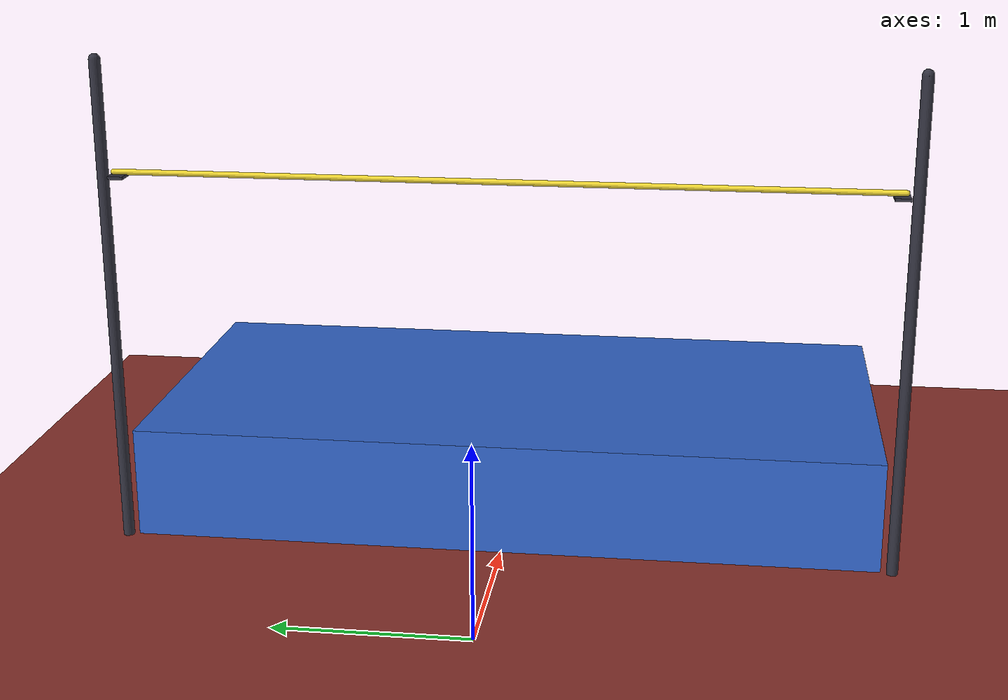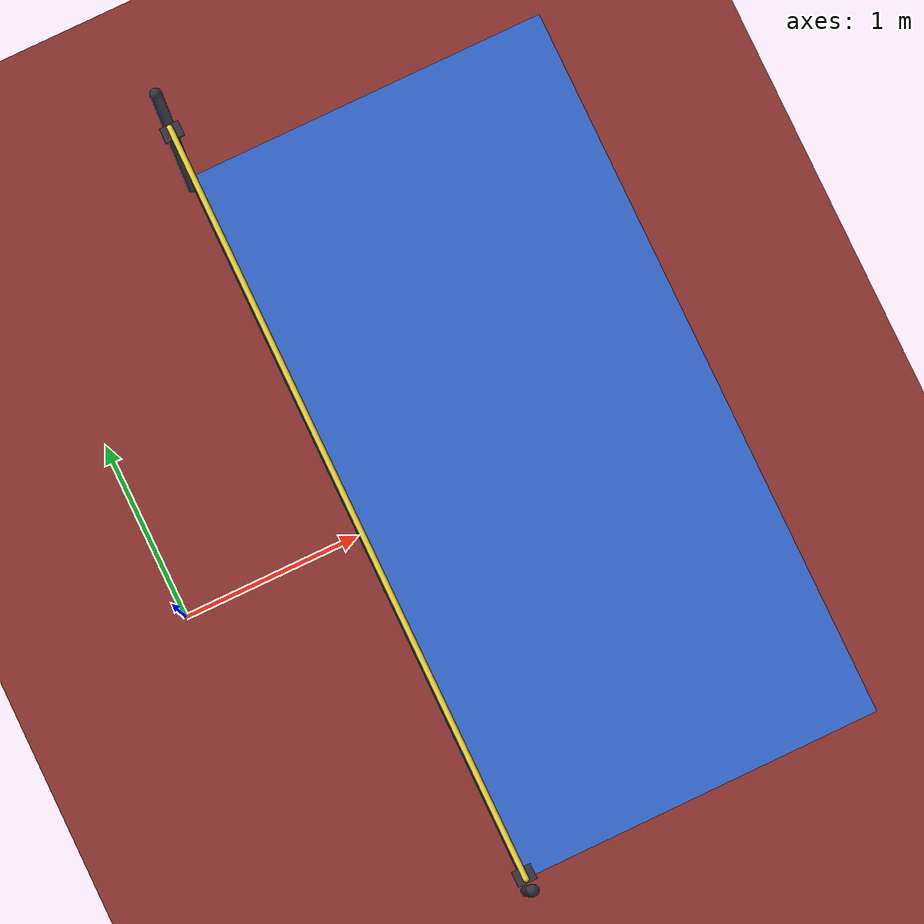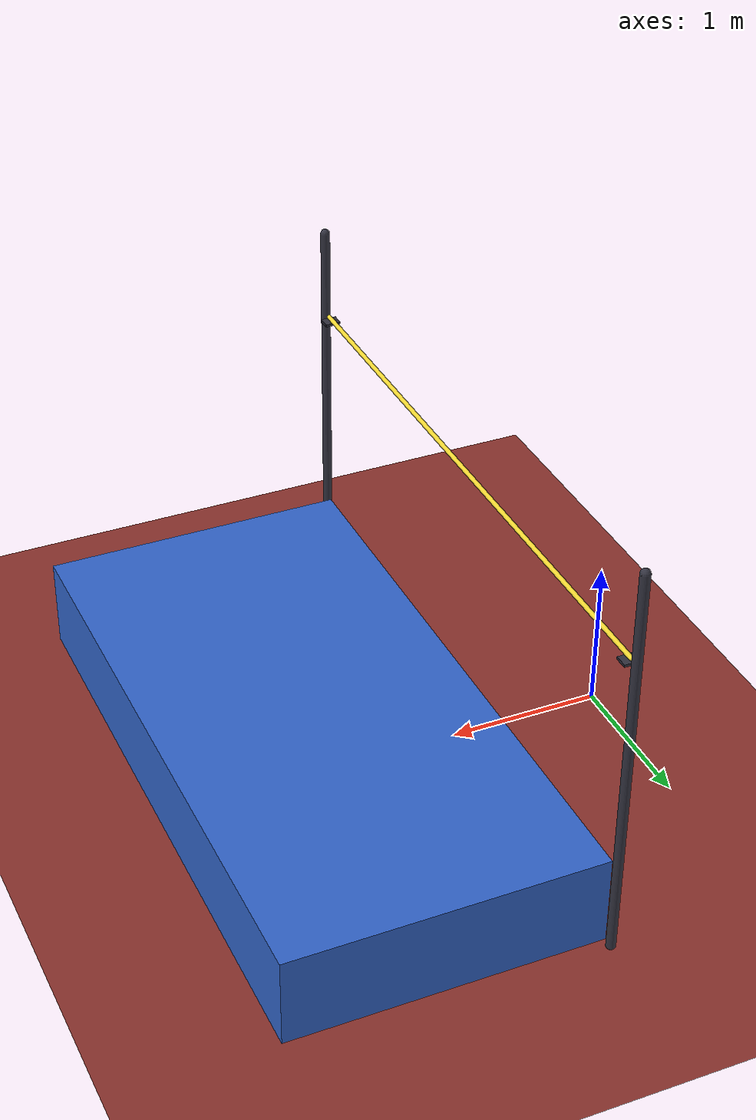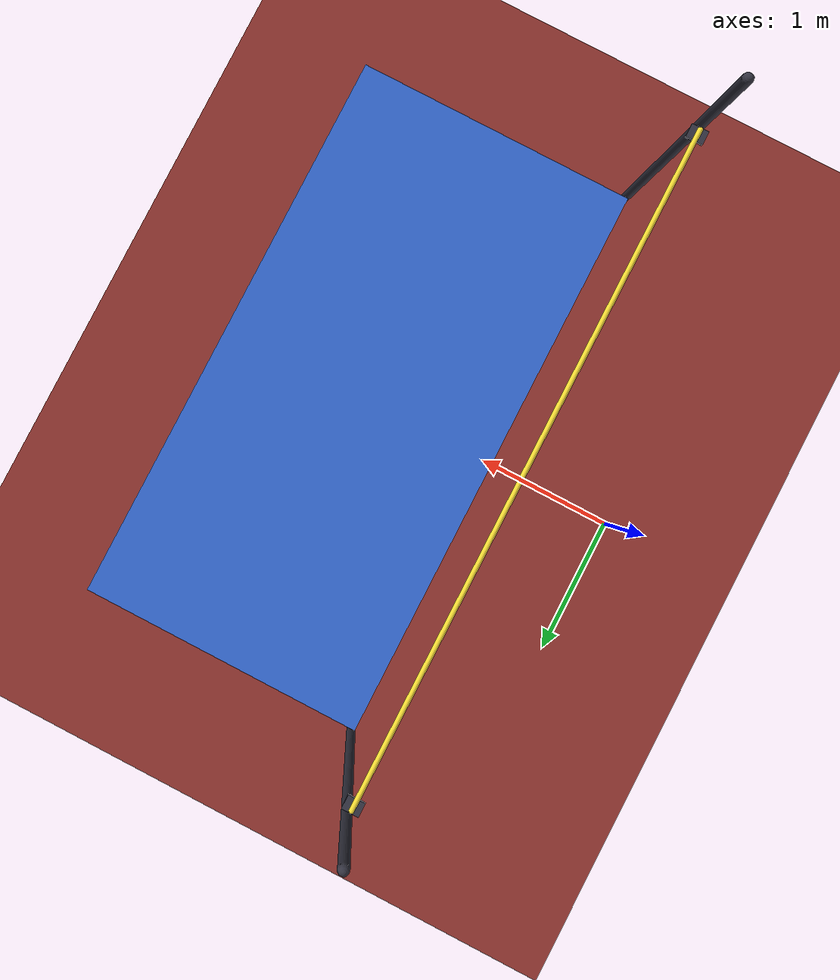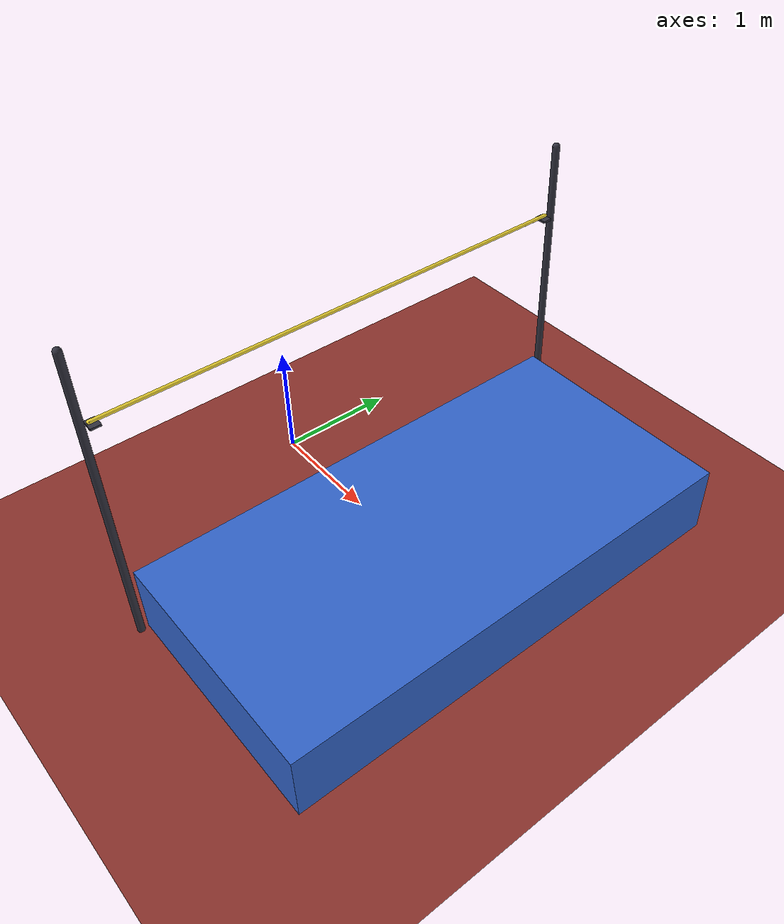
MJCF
<mujoco model="highjump_arena">
  <compiler angle="radian"/>

  <default>
    <default class="arena">
      <geom contype="1" conaffinity="1" condim="3"/>
    </default>
  </default>

  <asset>
    <material name="mat_runway" rgba="0.55 0.20 0.18 1"/>
    <material name="mat_standard" rgba="0.20 0.20 0.25 1"/>
    <material name="mat_bar" rgba="0.95 0.85 0.20 1"/>
    <material name="mat_pad" rgba="0.20 0.40 0.80 1"/>
  </asset>

  <worldbody>
    <light name="arena_light" pos="0 0 5" dir="0 0 -1" directional="true"/>

    <!-- runway / ground plane -->
    <geom name="arena_floor" class="arena" type="plane" size="0 0 0.05"
          material="mat_runway"/>

    <!-- landing mat: soft box behind the bar (top at z=0.6) -->
    <geom name="landing_mat" class="arena" type="box" size="1.0 2.0 0.3"
          pos="2.0 0 0.3" material="mat_pad"
          solref="0.04 1" solimp="0.85 0.92 0.02"
          friction="1.0 0.005 0.0001"/>

    <body name="standard_l" pos="1.0 2.06 0">
      <geom name="pole_l" class="arena" type="capsule" fromto="0 0 0 0 0 2.6"
            size="0.03" material="mat_standard"/>
      <geom name="peg_l" class="arena" type="box" size="0.05 0.04 0.008"
            pos="0 -0.08 2.0" condim="6" material="mat_standard"/>
    </body>
    <body name="standard_r" pos="1.0 -2.06 0">
      <geom name="pole_r" class="arena" type="capsule" fromto="0 0 0 0 0 2.6"
            size="0.03" material="mat_standard"/>
      <geom name="peg_r" class="arena" type="box" size="0.05 0.04 0.008"
            pos="0 0.08 2.0" condim="6" material="mat_standard"/>
    </body>

    <body name="crossbar" pos="1.0 0 2.024">
      <freejoint name="crossbar_free"/>
      <!-- conaffinity=3: bit 0 collides with the pegs/floor it rests on; bit 1
           collides with athlete bodies (contype=2) so a clip knocks the bar. -->
      <geom name="crossbar" class="arena" type="capsule" fromto="0 -2.0 0 0 2.0 0"
            size="0.015" mass="0.5" condim="6" friction="1.0 0.02 0.02"
            conaffinity="3" material="mat_bar"/>
    </body>
  </worldbody>
</mujoco>
